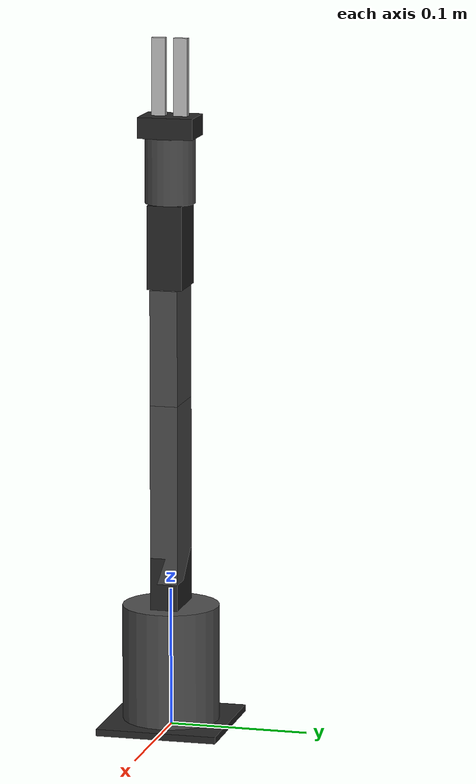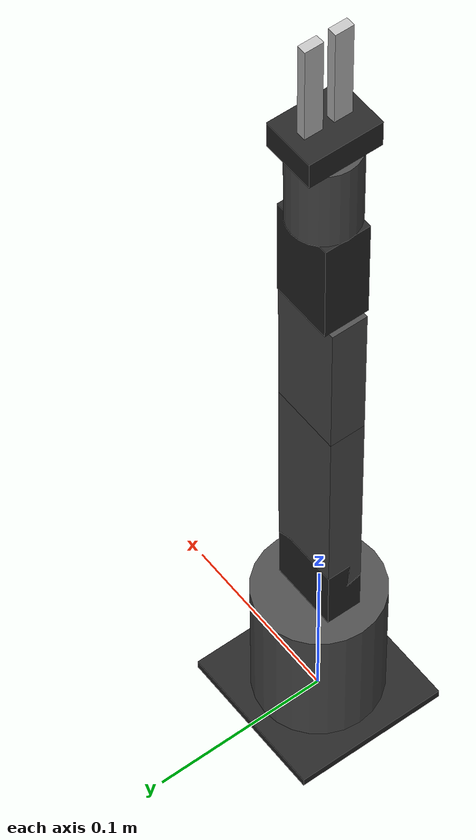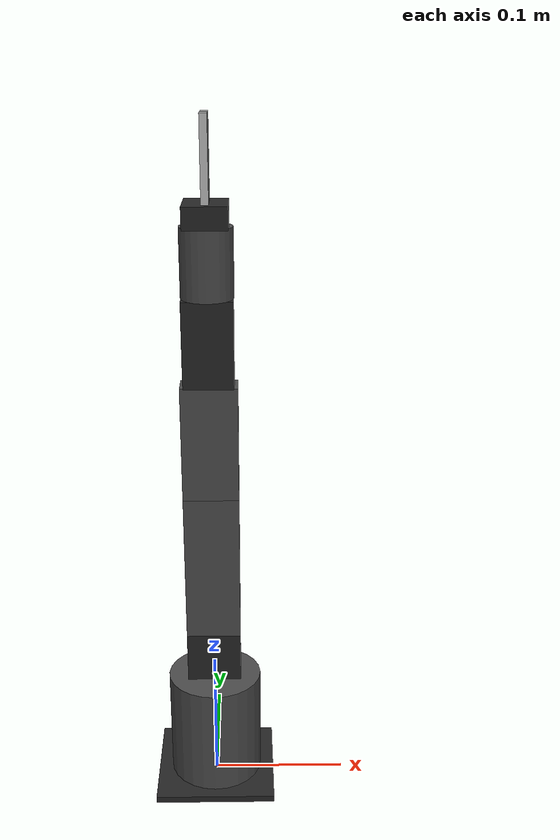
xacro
<?xml version="1.0"?>
<robot xmlns:xacro="http://www.ros.org/wiki/xacro" name="6dof_arm">

  <xacro:property name="base_width"      value="0.090"/>
  <xacro:property name="base_depth"      value="0.088"/>
  <xacro:property name="base_height"     value="0.084"/>
  <xacro:property name="upper_arm_len"   value="0.130"/>
  <xacro:property name="forearm_len"     value="0.083"/>
  <xacro:property name="wrist_len"       value="0.060"/>
  <xacro:property name="gripper_len"     value="0.047"/>
  <xacro:property name="finger_len"      value="0.055"/>
  <xacro:property name="link_width"      value="0.040"/>
  <xacro:property name="servo_w"         value="0.040"/>
  <xacro:property name="servo_h"         value="0.038"/>
  <xacro:property name="servo_d"         value="0.020"/>

  <material name="black">
    <color rgba="0.15 0.15 0.15 1.0"/>
  </material>
  <material name="dark_gray">
    <color rgba="0.3 0.3 0.3 1.0"/>
  </material>
  <material name="silver">
    <color rgba="0.75 0.75 0.75 1.0"/>
  </material>

  <!-- BASE LINK -->
  <link name="base_link">
    <visual>
      <geometry><box size="${base_width} ${base_depth} 0.005"/></geometry>
      <origin xyz="0 0 0.0025" rpy="0 0 0"/>
      <material name="black"/>
    </visual>
    <collision>
      <geometry><box size="${base_width} ${base_depth} 0.005"/></geometry>
      <origin xyz="0 0 0.0025" rpy="0 0 0"/>
    </collision>
    <inertial>
      <mass value="0.3"/>
      <origin xyz="0 0 0.0025" rpy="0 0 0"/>
      <inertia ixx="0.0002" ixy="0" ixz="0" iyy="0.0002" iyz="0" izz="0.0004"/>
    </inertial>
  </link>

  <!-- BASE ROTATION (Joint 0) -->
  <joint name="base_rotation_joint" type="revolute">
    <parent link="base_link"/>
    <child link="base_turntable"/>
    <origin xyz="0 0 0.005" rpy="0 0 0"/>
    <axis xyz="0 0 1"/>
    <limit lower="-3.14159" upper="3.14159" effort="5.0" velocity="1.0"/>
  </joint>

  <link name="base_turntable">
    <visual>
      <geometry><cylinder radius="0.035" length="${base_height}"/></geometry>
      <origin xyz="0 0 ${base_height/2}" rpy="0 0 0"/>
      <material name="dark_gray"/>
    </visual>
    <collision>
      <geometry><cylinder radius="0.035" length="${base_height}"/></geometry>
      <origin xyz="0 0 ${base_height/2}" rpy="0 0 0"/>
    </collision>
    <inertial>
      <mass value="0.2"/>
      <origin xyz="0 0 ${base_height/2}" rpy="0 0 0"/>
      <inertia ixx="0.0001" ixy="0" ixz="0" iyy="0.0001" iyz="0" izz="0.00005"/>
    </inertial>
  </link>

  <!-- SHOULDER SERVO -->
  <joint name="shoulder_servo_mount" type="fixed">
    <parent link="base_turntable"/>
    <child link="shoulder_servo"/>
    <origin xyz="0 0 ${base_height}" rpy="0 0 0"/>
  </joint>

  <link name="shoulder_servo">
    <visual>
      <geometry><box size="${servo_w} ${servo_d} ${servo_h}"/></geometry>
      <origin xyz="0 0 ${servo_h/2}" rpy="0 0 0"/>
      <material name="black"/>
    </visual>
    <inertial>
      <mass value="0.055"/>
      <origin xyz="0 0 ${servo_h/2}" rpy="0 0 0"/>
      <inertia ixx="0.00001" ixy="0" ixz="0" iyy="0.00001" iyz="0" izz="0.00001"/>
    </inertial>
  </link>

  <!-- SHOULDER (Joint 1) -->
  <joint name="shoulder_joint" type="revolute">
    <parent link="shoulder_servo"/>
    <child link="upper_arm"/>
    <origin xyz="0 0 ${servo_h/2}" rpy="0 0 0"/>
    <axis xyz="0 1 0"/>
    <limit lower="-1.5708" upper="1.5708" effort="5.0" velocity="1.0"/>
  </joint>

  <link name="upper_arm">
    <visual>
      <geometry><box size="${link_width} 0.020 ${upper_arm_len}"/></geometry>
      <origin xyz="0 0 ${upper_arm_len/2}" rpy="0 0 0"/>
      <material name="dark_gray"/>
    </visual>
    <collision>
      <geometry><box size="${link_width} 0.020 ${upper_arm_len}"/></geometry>
      <origin xyz="0 0 ${upper_arm_len/2}" rpy="0 0 0"/>
    </collision>
    <inertial>
      <mass value="0.15"/>
      <origin xyz="0 0 ${upper_arm_len/2}" rpy="0 0 0"/>
      <inertia ixx="0.0002" ixy="0" ixz="0" iyy="0.0002" iyz="0" izz="0.00005"/>
    </inertial>
  </link>

  <!-- ELBOW (Joint 2) -->
  <joint name="elbow_joint" type="revolute">
    <parent link="upper_arm"/>
    <child link="forearm"/>
    <origin xyz="0 0 ${upper_arm_len}" rpy="0 0 0"/>
    <axis xyz="0 1 0"/>
    <limit lower="-1.5708" upper="1.5708" effort="5.0" velocity="1.0"/>
  </joint>

  <link name="forearm">
    <visual>
      <geometry><box size="${link_width} 0.020 ${forearm_len}"/></geometry>
      <origin xyz="0 0 ${forearm_len/2}" rpy="0 0 0"/>
      <material name="dark_gray"/>
    </visual>
    <collision>
      <geometry><box size="${link_width} 0.020 ${forearm_len}"/></geometry>
      <origin xyz="0 0 ${forearm_len/2}" rpy="0 0 0"/>
    </collision>
    <inertial>
      <mass value="0.12"/>
      <origin xyz="0 0 ${forearm_len/2}" rpy="0 0 0"/>
      <inertia ixx="0.0001" ixy="0" ixz="0" iyy="0.0001" iyz="0" izz="0.00003"/>
    </inertial>
  </link>

  <!-- WRIST PITCH (Joint 3) -->
  <joint name="wrist_pitch_joint" type="revolute">
    <parent link="forearm"/>
    <child link="wrist_pitch_link"/>
    <origin xyz="0 0 ${forearm_len}" rpy="0 0 0"/>
    <axis xyz="0 1 0"/>
    <limit lower="-1.5708" upper="1.5708" effort="3.0" velocity="1.0"/>
  </joint>

  <link name="wrist_pitch_link">
    <visual>
      <geometry><box size="0.035 0.025 ${wrist_len}"/></geometry>
      <origin xyz="0 0 ${wrist_len/2}" rpy="0 0 0"/>
      <material name="black"/>
    </visual>
    <collision>
      <geometry><box size="0.035 0.025 ${wrist_len}"/></geometry>
      <origin xyz="0 0 ${wrist_len/2}" rpy="0 0 0"/>
    </collision>
    <inertial>
      <mass value="0.08"/>
      <origin xyz="0 0 ${wrist_len/2}" rpy="0 0 0"/>
      <inertia ixx="0.00005" ixy="0" ixz="0" iyy="0.00005" iyz="0" izz="0.00002"/>
    </inertial>
  </link>

  <!-- WRIST ROLL (Joint 4) -->
  <joint name="wrist_roll_joint" type="revolute">
    <parent link="wrist_pitch_link"/>
    <child link="wrist_roll_link"/>
    <origin xyz="0 0 ${wrist_len}" rpy="0 0 0"/>
    <axis xyz="0 0 1"/>
    <limit lower="-3.14159" upper="3.14159" effort="3.0" velocity="1.0"/>
  </joint>

  <link name="wrist_roll_link">
    <visual>
      <geometry><cylinder radius="0.018" length="${gripper_len}"/></geometry>
      <origin xyz="0 0 ${gripper_len/2}" rpy="0 0 0"/>
      <material name="dark_gray"/>
    </visual>
    <collision>
      <geometry><cylinder radius="0.018" length="${gripper_len}"/></geometry>
      <origin xyz="0 0 ${gripper_len/2}" rpy="0 0 0"/>
    </collision>
    <inertial>
      <mass value="0.06"/>
      <origin xyz="0 0 ${gripper_len/2}" rpy="0 0 0"/>
      <inertia ixx="0.00003" ixy="0" ixz="0" iyy="0.00003" iyz="0" izz="0.00001"/>
    </inertial>
  </link>

  <!-- GRIPPER BASE (fixed to wrist roll) -->
  <joint name="gripper_base_joint" type="fixed">
    <parent link="wrist_roll_link"/>
    <child link="gripper_base"/>
    <origin xyz="0 0 ${gripper_len}" rpy="0 0 0"/>
  </joint>

  <link name="gripper_base">
    <visual>
      <geometry><box size="0.030 0.040 0.015"/></geometry>
      <origin xyz="0 0 0.0075" rpy="0 0 0"/>
      <material name="black"/>
    </visual>
    <inertial>
      <mass value="0.04"/>
      <origin xyz="0 0 0.0075" rpy="0 0 0"/>
      <inertia ixx="0.00001" ixy="0" ixz="0" iyy="0.00001" iyz="0" izz="0.00001"/>
    </inertial>
  </link>

  <!-- LEFT FINGER (slides along Y) -->
  <joint name="finger_left_joint" type="prismatic">
    <parent link="gripper_base"/>
    <child link="finger_left"/>
    <origin xyz="0 -0.008 0.015" rpy="0 0 0"/>
    <axis xyz="0 -1 0"/>
    <limit lower="0" upper="0.015" effort="1.0" velocity="0.5"/>
  </joint>

  <link name="finger_left">
    <visual>
      <geometry><box size="0.005 0.010 ${finger_len}"/></geometry>
      <origin xyz="0 0 ${finger_len/2}" rpy="0 0 0"/>
      <material name="silver"/>
    </visual>
    <collision>
      <geometry><box size="0.005 0.010 ${finger_len}"/></geometry>
      <origin xyz="0 0 ${finger_len/2}" rpy="0 0 0"/>
    </collision>
    <inertial>
      <mass value="0.015"/>
      <origin xyz="0 0 ${finger_len/2}" rpy="0 0 0"/>
      <inertia ixx="0.000005" ixy="0" ixz="0" iyy="0.000005" iyz="0" izz="0.000001"/>
    </inertial>
  </link>

  <!-- RIGHT FINGER (slides along Y) -->
  <joint name="finger_right_joint" type="prismatic">
    <parent link="gripper_base"/>
    <child link="finger_right"/>
    <origin xyz="0 0.008 0.015" rpy="0 0 0"/>
    <axis xyz="0 1 0"/>
    <limit lower="0" upper="0.015" effort="1.0" velocity="0.5"/>
    <mimic joint="finger_left_joint" multiplier="1.0" offset="0"/>
  </joint>

  <link name="finger_right">
    <visual>
      <geometry><box size="0.005 0.010 ${finger_len}"/></geometry>
      <origin xyz="0 0 ${finger_len/2}" rpy="0 0 0"/>
      <material name="silver"/>
    </visual>
    <collision>
      <geometry><box size="0.005 0.010 ${finger_len}"/></geometry>
      <origin xyz="0 0 ${finger_len/2}" rpy="0 0 0"/>
    </collision>
    <inertial>
      <mass value="0.015"/>
      <origin xyz="0 0 ${finger_len/2}" rpy="0 0 0"/>
      <inertia ixx="0.000005" ixy="0" ixz="0" iyy="0.000005" iyz="0" izz="0.000001"/>
    </inertial>
  </link>

</robot>
